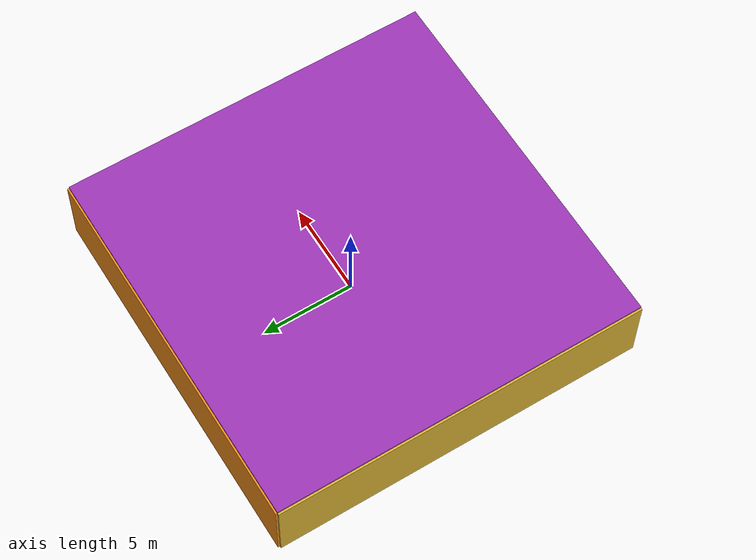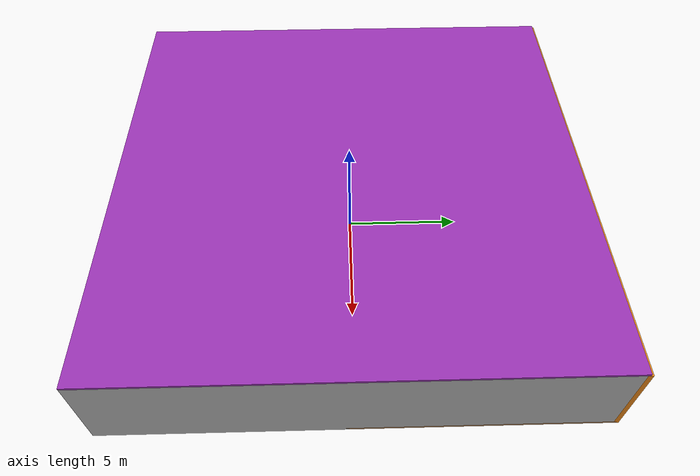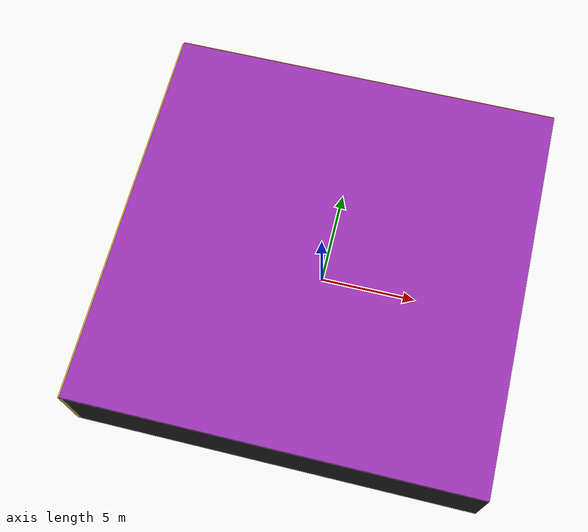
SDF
<sdf version="1.4">
 <world name="default">
  <physics type="ode">
   <max_step_size>0.001</max_step_size>
   <real_time_factor>1</real_time_factor>
   <real_time_update_rate>1000</real_time_update_rate>
   <gravity>0 0 -9.8</gravity>
  </physics>
  <scene><ambient>0.4 0.4 0.4 1</ambient><background>0.7 0.7 0.7 1</background><shadows>1</shadows></scene>
  <model name="Surrounding">
   <static>1</static>
   <link name="Ceiling">
    <collision name="Ceiling_Collision"><geometry><box><size>20 20 0.1</size></box></geometry></collision>
    <visual name="Ceiling_Visual">
     <geometry><box><size>20 20 0.1</size></box></geometry>
     <material>
      <script><uri>file://media/materials/scripts/gazebo.material</uri><name>Gazebo/Purple</name></script>
     </material>
    </visual>
    <pose>0 0 4.05 0 0 0</pose>
   </link>
   <link name="Wall_South">
    <collision name="Wall_South_Collision">
     <geometry><box><size>20 0 4</size></box></geometry>
     <pose>0 0 2 0 -0 0</pose>
    </collision>
    <visual name="Wall_South_Visual">
     <pose>0 0 2 0 -0 0</pose>
     <geometry><box><size>20 0 4</size></box></geometry>
     <material>
      <script><uri>file://media/materials/scripts/gazebo.material</uri><name>Gazebo/FlatBlack</name></script>
     </material>
    </visual>
    <velocity_decay><linear>0</linear><angular>0</angular></velocity_decay>
    <pose>0 -10 0 0 -0 0</pose>
   </link>
   <link name="Wall_East">
    <collision name="Wall_21_Collision">
     <geometry><box><size>20 0 4</size></box></geometry>
     <pose>0 0 2 0 -0 0</pose>
    </collision>
    <visual name="Wall_21_Visual">
     <pose>0 0 2 0 -0 0</pose>
     <geometry><box><size>20 0 4</size></box></geometry>
     <material>
      <script><uri>file://media/materials/scripts/gazebo.material</uri><name>Gazebo/LightOff</name></script>
     </material>
    </visual>
    <velocity_decay><linear>0</linear><angular>0</angular></velocity_decay>
    <pose>10 0 0 0 -0 1.5708</pose>
   </link>
   <link name="Wall_North">
    <collision name="Wall_22_Collision">
     <geometry><box><size>20 0.2 4</size></box></geometry>
     <pose>0 0 2 0 -0 0</pose>
    </collision>
    <visual name="Wall_22_Visual">
     <pose>0 0 2 0 -0 0</pose>
     <geometry><box><size>20 0.2 4</size></box></geometry>
     <material>
      <script><uri>file://media/materials/scripts/gazebo.material</uri><name>Gazebo/Orange</name></script>
     </material>
    </visual>
    <velocity_decay><linear>0</linear><angular>0</angular></velocity_decay>
    <pose>0 10 0 0 -0 0</pose>
   </link>
   <link name="Wall_West">
    <collision name="Wall_23_Collision">
     <geometry><box><size>20 0.2 4</size></box></geometry>
     <pose>0 0 2 0 -0 0</pose>
    </collision>
    <visual name="Wall_23_Visual">
     <pose>0 0 2 0 -0 0</pose>
     <geometry><box><size>20 0.2 4</size></box></geometry>
     <material>
      <script><uri>file://media/materials/scripts/gazebo.material</uri><name>Gazebo/Gold</name></script>
     </material>
    </visual>
    <velocity_decay><linear>0</linear><angular>0</angular></velocity_decay>
    <pose>-10 0 0 0 0 -1.5708</pose>
   </link>
   <link name="Ground_link">
    <collision name="collision">
     <pose>0 0 .05 0 -0 0</pose>
     <geometry><box><size>20 20 0.1</size></box></geometry>
    </collision>
    <visual name="visual">
     <pose>0 0 .05 0 -0 0</pose>
     <geometry><box><size>20 20 0.1</size></box></geometry>
     <material>
      <script><uri>file://media/materials/scripts/gazebo.material</uri><name>Gazebo/Wood</name></script>
     </material>
    </visual>
   </link>
   <static>1</static>
  </model>
  <spherical_coordinates>
   <surface_model>EARTH_WGS84</surface_model>
   <latitude_deg>0</latitude_deg>
   <longitude_deg>0</longitude_deg>
   <elevation>0</elevation>
   <heading_deg>0</heading_deg>
  </spherical_coordinates>
  <light name="lightball_0" type="diffuse">
   <diffuse>0.8 0.8 0.8 1</diffuse>
   <specular>0.2 0.2 0.2 1</specular>
   <attenuation>
    <range>100</range>
    <constant>0.7</constant>
    <linear>0.01</linear>
    <quadratic>0.001</quadratic>
   </attenuation>
   <direction>-0.5 0.1 -0.9</direction>
   <pose>-4.3267968398 -1.61972099952 0.795535591605 0 0 0</pose>
  </light>
  <light name="lightball_1" type="diffuse">
   <diffuse>0.8 0.8 0.8 1</diffuse>
   <specular>0.2 0.2 0.2 1</specular>
   <attenuation>
    <range>100</range>
    <constant>0.7</constant>
    <linear>0.01</linear>
    <quadratic>0.001</quadratic>
   </attenuation>
   <direction>-0.5 0.1 -0.9</direction>
   <pose>-9.48550375284 -7.30574961918 2.47022088476 0 0 0</pose>
  </light>
  <include><uri>model://table</uri><pose>-6.73607074131 2.10965801446 0 0 0 0.848871054325</pose></include>
  <include>
   <uri>model://textured_shapes</uri>
   <pose>-4.9445565372 -7.57038877032 0 0 0 0.882202621128</pose>
  </include>
  <include><uri>model://table</uri><pose>-3.96998464806 -2.07530887773 0 0 0 2.32911933284</pose></include>
  <include>
   <uri>model://construction_cone</uri>
   <pose>-3.78385385248 2.11164172731 0 0 0 1.10739682864</pose>
  </include>
  <include>
   <uri>model://robocup_3Dsim_goal</uri>
   <pose>4.82310150487 7.74461361379 0 0 0 0.712396953067</pose>
  </include>
  <include>
   <uri>model://robocup_3Dsim_goal</uri>
   <pose>7.73634775528 -1.78853443534 0 0 0 0.707079210463</pose>
  </include>
 </world>
</sdf>

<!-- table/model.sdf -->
<sdf version="1.5">
  <model name="table">
    <static>true</static>
    <link name="link">
      <collision name="surface">
        <pose>0 0 1.0 0 0 0</pose>
        <geometry>
          <box>
            <size>1.5 0.8 0.03</size>
          </box>
        </geometry>
        <surface>
          <friction>
            <ode>
              <mu>0.6</mu>
              <mu2>0.6</mu2>
            </ode>
          </friction>
        </surface>
      </collision>
      <visual name="visual1">
        <pose>0 0 1.0 0 0 0</pose>
        <geometry>
          <box>
            <size>1.5 0.8 0.03</size>
          </box>
        </geometry>
        <material>
          <script>
            <uri>model://media/materials/scripts/gazebo.material</uri>
            <name>Gazebo/Wood</name>
          </script>
        </material>
      </visual>
      <collision name="front_left_leg">
        <pose>0.68 0.38 0.5 0 0 0</pose>
        <geometry>
          <cylinder>
            <radius>0.02</radius>
            <length>1.0</length>
          </cylinder>
        </geometry>
      </collision>
      <visual name="front_left_leg">
        <pose>0.68 0.38 0.5 0 0 0</pose>
        <geometry>
          <cylinder>
            <radius>0.02</radius>
            <length>1.0</length>
          </cylinder>
        </geometry>
        <material>
          <script>
            <uri>model://media/materials/scripts/gazebo.material</uri>
            <name>Gazebo/Grey</name>
          </script>
        </material>
      </visual>
      <collision name="front_right_leg">
        <pose>0.68 -0.38 0.5 0 0 0</pose>
        <geometry>
          <cylinder>
            <radius>0.02</radius>
            <length>1.0</length>
          </cylinder>
        </geometry>
      </collision>
      <visual name="front_right_leg">
        <pose>0.68 -0.38 0.5 0 0 0</pose>
        <geometry>
          <cylinder>
            <radius>0.02</radius>
            <length>1.0</length>
          </cylinder>
        </geometry>
        <material>
          <script>
            <uri>model://media/materials/scripts/gazebo.material</uri>
            <name>Gazebo/Grey</name>
          </script>
        </material>
      </visual>
      <collision name="back_right_leg">
        <pose>-0.68 -0.38 0.5 0 0 0</pose>
        <geometry>
          <cylinder>
            <radius>0.02</radius>
            <length>1.0</length>
          </cylinder>
        </geometry>
      </collision>
      <visual name="back_right_leg">
        <pose>-0.68 -0.38 0.5 0 0 0</pose>
        <geometry>
          <cylinder>
            <radius>0.02</radius>
            <length>1.0</length>
          </cylinder>
        </geometry>
        <material>
          <script>
            <uri>model://media/materials/scripts/gazebo.material</uri>
            <name>Gazebo/Grey</name>
          </script>
        </material>
      </visual>
      <collision name="back_left_leg">
        <pose>-0.68 0.38 0.5 0 0 0</pose>
        <geometry>
          <cylinder>
            <radius>0.02</radius>
            <length>1.0</length>
          </cylinder>
        </geometry>
      </collision>
      <visual name="back_left_leg">
        <pose>-0.68 0.38 0.5 0 0 0</pose>
        <geometry>
          <cylinder>
            <radius>0.02</radius>
            <length>1.0</length>
          </cylinder>
        </geometry>
        <material>
          <script>
            <uri>model://media/materials/scripts/gazebo.material</uri>
            <name>Gazebo/Grey</name>
          </script>
        </material>
      </visual>
    </link>
  </model>
</sdf>

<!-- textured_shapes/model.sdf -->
<sdf version="1.6">
  <model name="textured_shapes">
    <pose>0 0 0.5 0 0 0</pose>
    <link name="box">
      <pose>0 -1.5 0 0 0 0</pose>
      <collision name="collision">
        <geometry>
          <box>
            <size>1 1 1</size>
          </box>
        </geometry>
      </collision>
      <visual name="visual">
        <geometry>
          <box>
            <size>1 1 1</size>
          </box>
        </geometry>
        <material>
          <script>
            <uri>model://../model_source/models/textured_shapes/materials/scripts</uri>
            <uri>model://../model_source/models/textured_shapes/materials/textures</uri>
            <name>TexturedShape/Squares</name>
          </script>
        </material>
      </visual>
    </link>
    <link name="sphere">
      <collision name="collision">
        <geometry>
          <sphere>
            <radius>0.5</radius>
          </sphere>
        </geometry>
      </collision>
      <visual name="visual">
        <geometry>
          <sphere>
            <radius>0.5</radius>
          </sphere>
        </geometry>
        <material>
          <script>
            <uri>model://../model_source/models/textured_shapes/materials/scripts</uri>
            <uri>model://../model_source/models/textured_shapes/materials/textures</uri>
            <name>TexturedShape/Squares</name>
          </script>
        </material>
      </visual>
    </link>
    <link name="cylinder">
      <pose>0 1.5 0 0 0 0</pose>
      <collision name="collision">
        <geometry>
          <cylinder>
            <radius>0.5</radius>
            <length>1</length>
          </cylinder>
        </geometry>
      </collision>
      <visual name="visual">
        <geometry>
          <cylinder>
            <radius>0.5</radius>
            <length>1</length>
          </cylinder>
        </geometry>
        <material>
          <script>
            <uri>model://../model_source/models/textured_shapes/materials/scripts</uri>
            <uri>model://../model_source/models/textured_shapes/materials/textures</uri>
            <name>TexturedShape/Squares</name>
          </script>
        </material>
      </visual>
    </link>
  </model>
</sdf>

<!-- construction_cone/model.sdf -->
<sdf version="1.5">
  <model name="Construction Cone">
    <link name="link">
      <collision name="collision">
        <geometry>
          <mesh>
            <scale>10 10 10</scale>
            <uri>file://isr-testbed/construction_cone/meshes/construction_cone.dae</uri>
          </mesh>
        </geometry>
      </collision>
      <visual name="visual">
        <geometry>
          <mesh>
            <scale>10 10 10</scale>
            <uri>file://isr-testbed/construction_cone/meshes/construction_cone.dae</uri>
          </mesh>
        </geometry>
      </visual>
    </link>
  </model>
</sdf>

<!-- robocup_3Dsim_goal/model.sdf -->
<sdf version="1.5">
  <model name="robocup_3d_goal">
    <static>true</static>
    <link name="left_post">
      <pose>0 1.05 0.45 0 0 0</pose>
      <collision name="collision">
        <geometry>
          <cylinder>
            <radius>0.05</radius>
            <length>0.9</length>
          </cylinder>
        </geometry>
      </collision>
      <visual name="visual">
        <geometry>
          <cylinder>
            <radius>0.05</radius>
            <length>0.9</length>
          </cylinder>
        </geometry>
        <material>
          <script>
            <uri>file://media/materials/scripts/gazebo.material</uri>
            <name>Gazebo/ZincYellow</name>
          </script>
        </material>
      </visual>
    </link>
    <link name="left_support_horiz_lower">
      <pose>0.30 1.05 0.01 0 0 0</pose>
      <collision name="collision">
        <geometry>
          <box>
            <size>0.50 0.02 0.02</size>
          </box>
        </geometry>
      </collision>
      <visual name="visual">
        <geometry>
          <box>
            <size>0.50 0.02 0.02</size>
          </box>
        </geometry>
        <material>
          <script>
            <uri>file://media/materials/scripts/gazebo.material</uri>
            <name>Gazebo/White</name>
          </script>
        </material>
      </visual>
    </link>
    <link name="left_support_horiz_upper">
      <pose>0.30 1.05 0.79 0 0 0</pose>
      <collision name="collision">
        <geometry>
          <box>
            <size>0.50 0.02 0.02</size>
          </box>
        </geometry>
      </collision>
      <visual name="visual">
        <geometry>
          <box>
            <size>0.50 0.02 0.02</size>
          </box>
        </geometry>
        <material>
          <script>
            <uri>file://media/materials/scripts/gazebo.material</uri>
            <name>Gazebo/White</name>
          </script>
        </material>
      </visual>
    </link>
    <link name="left_support_vertical">
      <pose>0.56 1.05 0.4 0 1.5708 0</pose>
      <collision name="collision">
        <geometry>
          <box>
            <size>0.80 0.02 0.02</size>
          </box>
        </geometry>
      </collision>
      <visual name="visual">
        <geometry>
          <box>
            <size>0.80 0.02 0.02</size>
          </box>
        </geometry>
        <material>
          <script>
            <uri>file://media/materials/scripts/gazebo.material</uri>
            <name>Gazebo/White</name>
          </script>
        </material>
      </visual>
    </link>
    <link name="right_support_horiz_lower">
      <pose>0.30 -1.05 0.01 0 0 0</pose>
      <collision name="collision">
        <geometry>
          <box>
            <size>0.50 0.02 0.02</size>
          </box>
        </geometry>
      </collision>
      <visual name="visual">
        <geometry>
          <box>
            <size>0.50 0.02 0.02</size>
          </box>
        </geometry>
        <material>
          <script>
            <uri>file://media/materials/scripts/gazebo.material</uri>
            <name>Gazebo/White</name>
          </script>
        </material>
      </visual>
    </link>
    <link name="right_support_horiz_upper">
      <pose>0.30 -1.05 0.79 0 0 0</pose>
      <collision name="collision">
        <geometry>
          <box>
            <size>0.50 0.02 0.02</size>
          </box>
        </geometry>
      </collision>
      <visual name="visual">
        <geometry>
          <box>
            <size>0.50 0.02 0.02</size>
          </box>
        </geometry>
        <material>
          <script>
            <uri>file://media/materials/scripts/gazebo.material</uri>
            <name>Gazebo/White</name>
          </script>
        </material>
      </visual>
    </link>
    <link name="right_support_vertical">
      <pose>0.56 -1.05 0.4 0 1.5708 0</pose>
      <collision name="collision">
        <geometry>
          <box>
            <size>0.80 0.02 0.02</size>
          </box>
        </geometry>
      </collision>
      <visual name="visual">
        <geometry>
          <box>
            <size>0.80 0.02 0.02</size>
          </box>
        </geometry>
        <material>
          <script>
            <uri>file://media/materials/scripts/gazebo.material</uri>
            <name>Gazebo/White</name>
          </script>
        </material>
      </visual>
    </link>
    <link name="center_support_horiz_lower">
      <pose>0.56 0 0.01 0 1.5708 0</pose>
      <collision name="collision">
        <geometry>
          <box>
            <size>0.02 2.08 0.02</size>
          </box>
        </geometry>
      </collision>
      <visual name="visual">
        <geometry>
          <box>
            <size>0.02 2.08 0.02</size>
          </box>
        </geometry>
        <material>
          <script>
            <uri>file://media/materials/scripts/gazebo.material</uri>
            <name>Gazebo/White</name>
          </script>
        </material>
      </visual>
    </link>
    <link name="center_support_horiz_upper">
      <pose>0.56 0 0.79 0 1.5708 0</pose>
      <collision name="collision">
        <geometry>
          <box>
            <size>0.02 2.08 0.02</size>
          </box>
        </geometry>
      </collision>
      <visual name="visual">
        <geometry>
          <box>
            <size>0.02 2.08 0.02</size>
          </box>
        </geometry>
        <material>
          <script>
            <uri>file://media/materials/scripts/gazebo.material</uri>
            <name>Gazebo/White</name>
          </script>
        </material>
      </visual>
    </link>
    <link name="right_post">
      <pose>0 -1.05 0.45 0 0 0</pose>
      <collision name="collision">
        <geometry>
          <cylinder>
            <radius>0.05</radius>
            <length>0.9</length>
          </cylinder>
        </geometry>
      </collision>
      <visual name="visual">
        <geometry>
          <cylinder>
            <radius>0.05</radius>
            <length>0.9</length>
          </cylinder>
        </geometry>
        <material>
          <script>
            <uri>file://media/materials/scripts/gazebo.material</uri>
            <name>Gazebo/ZincYellow</name>
          </script>
        </material>
      </visual>
    </link>
    <link name="crossbar">
      <pose>0 0 0.85 1.57 1.57 0</pose>
      <collision name="collision">
        <geometry>
          <cylinder>
            <radius>0.05</radius>
            <length>2.0</length>
          </cylinder>
        </geometry>
      </collision>
      <visual name="visual">
        <geometry>
          <cylinder>
            <radius>0.05</radius>
            <length>2.0</length>
          </cylinder>
        </geometry>
        <material>
          <script>
            <uri>file://media/materials/scripts/gazebo.material</uri>
            <name>Gazebo/ZincYellow</name>
          </script>
        </material>
      </visual>
    </link>
    <link name="center_net">
      <pose>0.56 0 0.40 0 0 0</pose>
      <collision name="collision">
        <geometry>
          <box>
            <size>0.01 2.1 0.80</size>
          </box>
        </geometry>
      </collision>
      <visual name="visual">
        <geometry>
          <box>
            <size>0.01 2.1 0.80</size>
          </box>
        </geometry>
        <material>
          <script>
            <uri>model://../model_source/models/robocup09_spl_field/materials/scripts/</uri>
            <uri>model://../model_source/models/robocup09_spl_field/materials/textures/</uri>
            <name>RoboCup/Net</name>
          </script>
        </material>
      </visual>
    </link>
    <link name="left_net">
      <pose>0.30 1.05 0.40 0 0 0</pose>
      <collision name="collision">
        <geometry>
          <box>
            <size>0.50 0.01 0.76</size>
          </box>
        </geometry>
      </collision>
      <visual name="visual">
        <geometry>
          <box>
            <size>0.50 0.01 0.76</size>
          </box>
        </geometry>
        <material>
          <script>
            <uri>model://../model_source/models/robocup09_spl_field/materials/scripts/</uri>
            <uri>model://../model_source/models/robocup09_spl_field/materials/textures/</uri>
            <name>RoboCup/Net</name>
          </script>
        </material>
      </visual>
    </link>
    <link name="right_net">
      <pose>0.30 -1.05 0.40 0 0 0</pose>
      <collision name="collision">
        <geometry>
          <box>
            <size>0.50 0.01 0.76</size>
          </box>
        </geometry>
      </collision>
      <visual name="visual">
        <geometry>
          <box>
            <size>0.50 0.01 0.76</size>
          </box>
        </geometry>
        <material>
          <script>
            <uri>model://../model_source/models/robocup09_spl_field/materials/scripts/</uri>
            <uri>model://../model_source/models/robocup09_spl_field/materials/textures/</uri>
            <name>RoboCup/Net</name>
          </script>
        </material>
      </visual>
    </link>
  </model>
</sdf>
